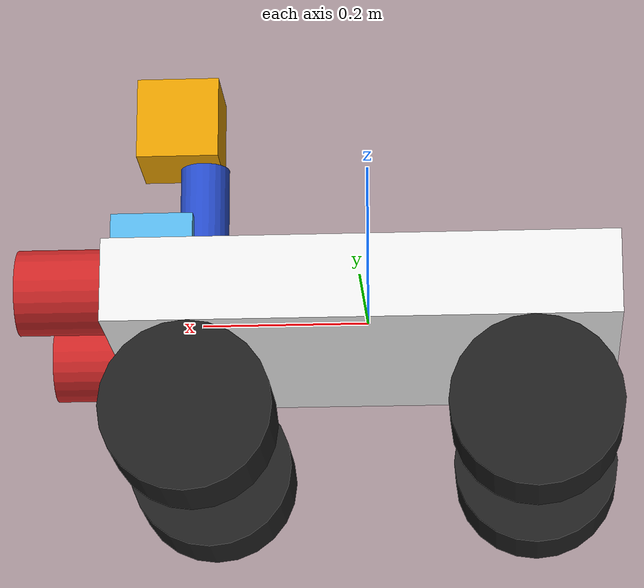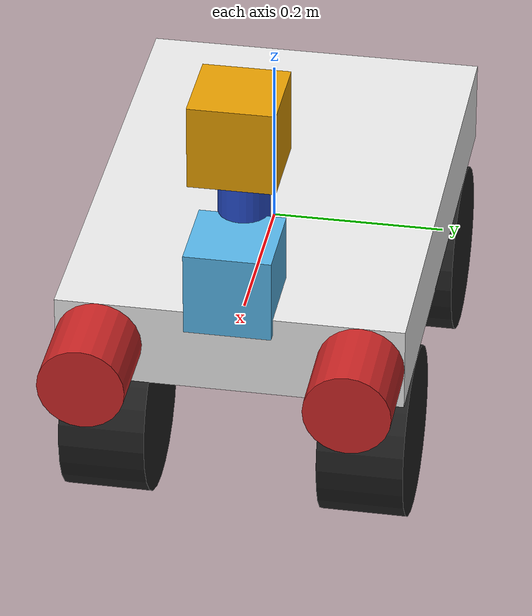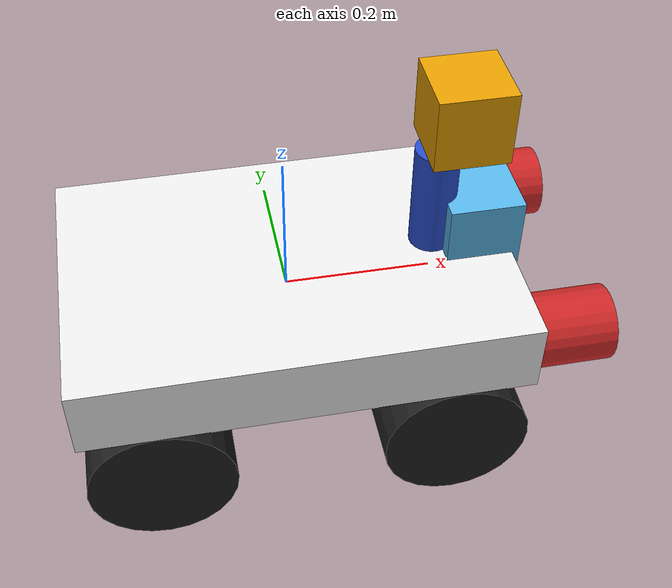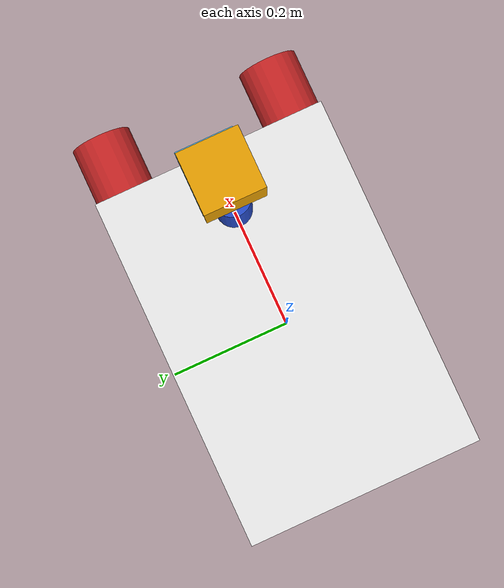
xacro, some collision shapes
<?xml version="1.0"?>
<!-- Revolute-Revolute Manipulator -->
<robot name="bot" xmlns:xacro="http://www.ros.org/wiki/xacro">

  <!-- Constants for robot dimensions -->
  <xacro:property name="pi" value="3.1415926535897931"/>
  <xacro:property name="width" value="0.4" /> <!-- Square dimensions (widthxwidth) of beams -->
  <xacro:property name="height" value="0.1" /> <!-- Link 1 -->
  <xacro:property name="length" value="0.6" /> <!-- Link 2 -->
  <xacro:property name="diameter" value="0.1" /> <!-- Link 3 -->
  <xacro:property name="xval" value="0.2" /> <!-- Link 3 -->
  <xacro:property name="yval" value="0.15" /> <!-- Link 3 -->
  <xacro:property name="zval" value="0.15" /> <!-- Link 3 -->

<xacro:include filename="$(find my_bot)/urdf/bot.gazebo" />

  <link name="base_link">
    <visual>
      <geometry>
        <box size="${length} ${width} ${height}"/>
      </geometry>
    <material name="white"/>
    </visual>
    <collision>
      <geometry>
        <box size="${length} ${width} ${height}"/>
      </geometry>
    </collision>
    <inertial>
      <mass value="10"/>
      <inertia ixx="1.0" ixy="0.0" ixz="0.0" iyy="1.0" iyz="0.0" izz="1.0"/>
    </inertial>
  </link>

<xacro:macro name="wheel" params="pre suf ref var">
  <link name="${pre}_${suf}_wheel">
    <visual>
      <geometry>
        <cylinder length="${height}" radius="${height}"/>
      </geometry>
      <origin rpy="${pi/2} 0 0"/>
    <material name="black"/>
    </visual>
    <collision>
      <origin rpy="${pi/2} 0 0" />
      <geometry>
        <cylinder length="${height}" radius="${height}"/>
      </geometry>
    </collision>
    <inertial>
      <mass value="2.5"/>
      <inertia ixx="1.0" ixy="0.0" ixz="0.0" iyy="1.0" iyz="0.0" izz="1.0"/>
    </inertial>
  </link>
  <joint name="base_to_${pre}_${suf}_wheel" type="continuous">
    <axis rpy="0 0 0" xyz="0 1 0"/>
    <parent link="base_link"/>
    <child link="${pre}_${suf}_wheel"/>
    <origin xyz="${xval*ref} ${yval*var} -${zval}"/>
  </joint>
     <gazebo reference="${pre}_${suf}_wheel">
      <mu1 value="100.0"/>
      <mu2 value="100.0"/>
      <kp value="10000000.0" />
      <kd value="1.0" />
      <material>Gazebo/Grey</material>
    </gazebo>
  <transmission name="${pre}_${suf}_wheel_trans">
       <type>transmission_interface/SimpleTransmission</type>
       <actuator name="${pre}_${suf}_wheel_motor">
         <mechanicalReduction>1</mechanicalReduction>
       </actuator>
       <joint name="base_to_${pre}_${suf}_wheel">
         <hardwareInterface>hardware_interface/VelocityJointInterface</hardwareInterface>
       </joint>
   </transmission>
</xacro:macro>
<xacro:wheel pre="right" suf="front" ref="1" var="-1"/>
<xacro:wheel pre="right" suf="back" ref="-1" var="-1"/>
<xacro:wheel pre="left" suf="front" ref="1" var="1"/>
<xacro:wheel pre="left" suf="back" ref="-1" var="1"/>

<xacro:macro name="light" params="pre suf">
<link name="${pre}_light">
    <visual>
      <geometry>
        <cylinder length="${height}" radius="${height/2}"/>
      </geometry>
      <origin rpy="${pi/2} 0 ${pi/2}" xyz="0 0 -0.05"/>
      <material name="red"/>
      </visual>
      <collision>
      <origin rpy="${pi/2} 0 ${pi/2}" xyz="0 0 -0.05"/>
      <geometry>
        <cylinder length="${height}" radius="${height/2}"/>
      </geometry>
    </collision>
    <inertial>
      <mass value="1.25"/>
      <inertia ixx="1.0" ixy="0.0" ixz="0.0" iyy="1.0" iyz="0.0" izz="1.0"/>
    </inertial>
  </link>
  <joint name="base_to_${pre}_light" type="fixed">
    <parent link="base_link"/>
    <child link="${pre}_light"/>
    <origin xyz="0.35 ${yval*suf} 0.05"/>
    </joint>
</xacro:macro>
<xacro:light pre="right" suf="-1"/>
<xacro:light pre="left" suf="1"/>

<link name="kinect_joint">
    <visual>
      <geometry>
        <cylinder length="0.15" radius="${height/2-0.02}"/>
      </geometry>
      <origin rpy="0 0 0" />
     <material name="blue"/>
     </visual>
     <collision>
      <origin rpy="0 0 0" />
      <geometry>
        <cylinder length="0.15" radius="${height/2-0.02}"/>
      </geometry>
    </collision>
    <inertial>
      <mass value="1.75"/>
      <inertia ixx="1.0" ixy="0.0" ixz="0.0" iyy="1.0" iyz="0.0" izz="1.0"/>
    </inertial>
  </link>
  <joint name="base_to_kinect" type="fixed">
    <parent link="base_link"/>
    <child link="kinect_joint"/>
    <origin xyz="0.2 0 0.125"/>
    </joint>
<joint name="this_is_kinect" type="fixed">
    <axis xyz="0 1 0" />
    <origin xyz="0.03 0 0.128" rpy="0 0 0"/>
    <parent link="kinect_joint"/>
    <child link="kinect_link"/>
  </joint>
<!-- Kinect -->
  <link name="kinect_link">
    <collision>
      <origin xyz="0 0 0" rpy="0 0 0"/>
      <geometry>
    <box size="0.1 0.1 0.1"/>
      </geometry>
    </collision>
    <visual>
      <origin xyz="0 0 0" rpy="0 0 0"/>
      <geometry>
        <mesh filename="package://my_bot/meshes/kinect.dae"/>
      </geometry>
    </visual>
    <inertial>
      <mass value="1e-5" />
      <origin xyz="0 0 0" rpy="0 0 0"/>
      <inertia ixx="1e-6" ixy="0" ixz="0" iyy="1e-6" iyz="0" izz="1e-6" />
    </inertial>
  </link>

<link name="hokuyo_link">
    <collision>
      <origin xyz="0 0 0" rpy="0 0 0"/>
      <geometry>
    <box size="0.1 0.1 0.1"/>
      </geometry>
    </collision>
    <visual>
      <origin xyz="0 0 0" rpy="0 0 0"/>
      <geometry>
        <mesh filename="package://my_bot/meshes/hokuyo.dae"/>
      </geometry>
    </visual>
    <inertial>
      <mass value="1e-5" />
      <origin xyz="0 0 0" rpy="0 0 0"/>
      <inertia ixx="1e-6" ixy="0" ixz="0" iyy="1e-6" iyz="0" izz="1e-6" />
    </inertial>
</link>
  <joint name="this_is_laser" type="fixed">
    <axis xyz="0 1 0" />
    <origin xyz="0.26 0 0.08" rpy="0 0 0"/>
    <parent link="base_link"/>
    <child link="hokuyo_link"/>
  </joint>

  <!-- ros_control plugin -->
  <gazebo>
    <plugin name="gazebo_ros_control" filename="libgazebo_ros_control.so">
      <robotNamespace>/</robotNamespace>
     </plugin>
  </gazebo>

</robot>
